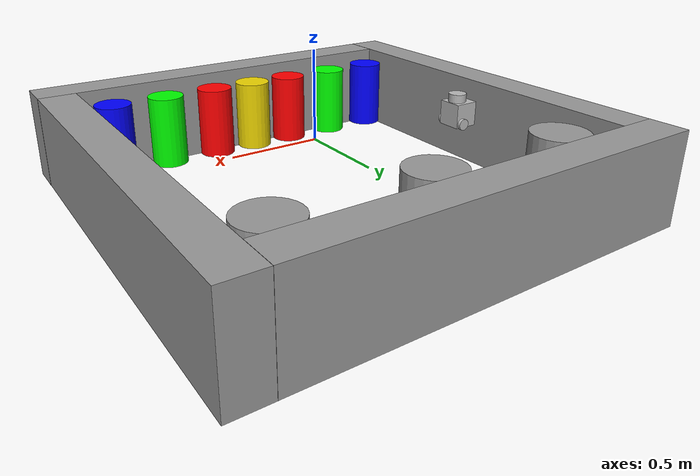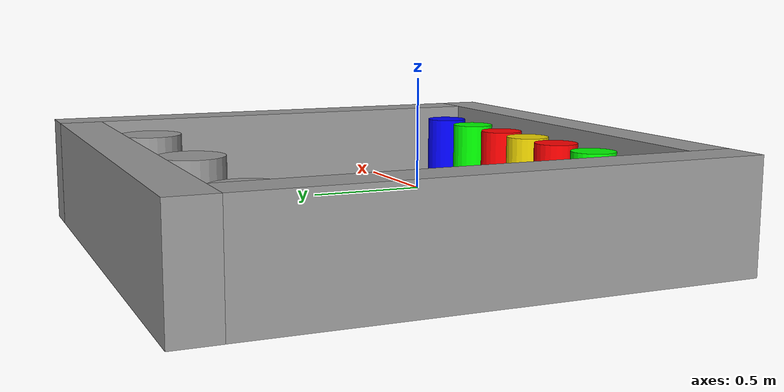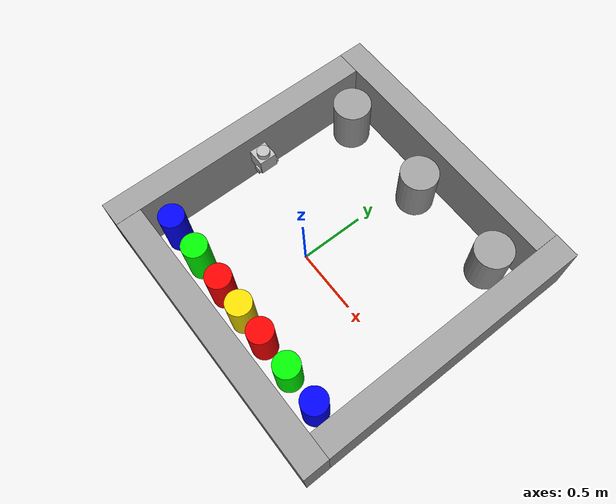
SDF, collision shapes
<?xml version='1.0'?>
<sdf version='1.6'>
  <model name='bar1'>
    <link name='link_0'>
      <inertial>
        <mass>1000</mass>
        <inertia>
          <ixx>24.1667</ixx>
          <ixy>0</ixy>
          <ixz>0</ixz>
          <iyy>424.167</iyy>
          <iyz>0</iyz>
          <izz>406.667</izz>
        </inertia>
        <pose frame=''>0 0 0 0 -0 0</pose>
      </inertial>
      <pose frame=''>0.158005 -0.863333 0 0 -0 0</pose>
      <gravity>1</gravity>
      <self_collide>0</self_collide>
      <kinematic>0</kinematic>
      <enable_wind>0</enable_wind>
      <visual name='visual'>
        <pose frame=''>0 0 0 0 -0 0</pose>
        <geometry>
          <box>
            <size>2.2 0.2 0.5</size>
          </box>
        </geometry>
        <material>
          <lighting>1</lighting>
          <script>
            <uri>file://media/materials/scripts/gazebo.material</uri>
            <name>Gazebo/Grey</name>
          </script>
          <shader type='pixel'>
            <normal_map>__default__</normal_map>
          </shader>
          <ambient>0.3 0.3 0.3 1</ambient>
          <diffuse>0.7 0.7 0.7 1</diffuse>
          <specular>0.01 0.01 0.01 1</specular>
          <emissive>0 0 0 1</emissive>
        </material>
        <transparency>0</transparency>
        <cast_shadows>1</cast_shadows>
      </visual>
      <collision name='collision'>
        <laser_retro>0</laser_retro>
        <max_contacts>10</max_contacts>
        <pose frame=''>0 0 0 0 -0 0</pose>
        <geometry>
          <box>
            <size>2.2 0.2 0.5</size>
          </box>
        </geometry>
        <surface>
          <friction>
            <ode>
              <mu>1</mu>
              <mu2>1</mu2>
              <fdir1>0 0 0</fdir1>
              <slip1>0</slip1>
              <slip2>0</slip2>
            </ode>
            <torsional>
              <coefficient>1</coefficient>
              <patch_radius>0</patch_radius>
              <surface_radius>0</surface_radius>
              <use_patch_radius>1</use_patch_radius>
              <ode>
                <slip>0</slip>
              </ode>
            </torsional>
          </friction>
          <bounce>
            <restitution_coefficient>0</restitution_coefficient>
            <threshold>1e+06</threshold>
          </bounce>
          <contact>
            <collide_without_contact>0</collide_without_contact>
            <collide_without_contact_bitmask>1</collide_without_contact_bitmask>
            <collide_bitmask>1</collide_bitmask>
            <ode>
              <soft_cfm>0</soft_cfm>
              <soft_erp>0.2</soft_erp>
              <kp>1e+13</kp>
              <kd>1</kd>
              <max_vel>0.01</max_vel>
              <min_depth>0</min_depth>
            </ode>
            <bullet>
              <split_impulse>1</split_impulse>
              <split_impulse_penetration_threshold>-0.01</split_impulse_penetration_threshold>
              <soft_cfm>0</soft_cfm>
              <soft_erp>0.2</soft_erp>
              <kp>1e+13</kp>
              <kd>1</kd>
            </bullet>
          </contact>
        </surface>
      </collision>
    </link>
    <link name='link_0_clone'>
      <inertial>
        <mass>1000</mass>
        <inertia>
          <ixx>24.1667</ixx>
          <ixy>0</ixy>
          <ixz>0</ixz>
          <iyy>424.167</iyy>
          <iyz>0</iyz>
          <izz>406.667</izz>
        </inertia>
        <pose frame=''>0 0 0 0 -0 0.03</pose>
      </inertial>
      <pose frame=''>1.158 0.336667 0 0 -0 1.57</pose>
      <gravity>1</gravity>
      <self_collide>0</self_collide>
      <kinematic>0</kinematic>
      <enable_wind>0</enable_wind>
      <visual name='visual'>
        <pose frame=''>0 0 0 0 -0 0</pose>
        <geometry>
          <box>
            <size>2.2 0.2 0.5</size>
          </box>
        </geometry>
        <material>
          <lighting>1</lighting>
          <script>
            <uri>file://media/materials/scripts/gazebo.material</uri>
            <name>Gazebo/Grey</name>
          </script>
          <shader type='pixel'>
            <normal_map>__default__</normal_map>
          </shader>
          <ambient>0.3 0.3 0.3 1</ambient>
          <diffuse>0.7 0.7 0.7 1</diffuse>
          <specular>0.01 0.01 0.01 1</specular>
          <emissive>0 0 0 1</emissive>
        </material>
        <transparency>0</transparency>
        <cast_shadows>1</cast_shadows>
      </visual>
      <collision name='collision'>
        <laser_retro>0</laser_retro>
        <max_contacts>10</max_contacts>
        <pose frame=''>0 0 0 0 -0 0</pose>
        <geometry>
          <box>
            <size>2.2 0.2 0.5</size>
          </box>
        </geometry>
        <surface>
          <friction>
            <ode>
              <mu>1</mu>
              <mu2>1</mu2>
              <fdir1>0 0 0</fdir1>
              <slip1>0</slip1>
              <slip2>0</slip2>
            </ode>
            <torsional>
              <coefficient>1</coefficient>
              <patch_radius>0</patch_radius>
              <surface_radius>0</surface_radius>
              <use_patch_radius>1</use_patch_radius>
              <ode>
                <slip>0</slip>
              </ode>
            </torsional>
          </friction>
          <bounce>
            <restitution_coefficient>0</restitution_coefficient>
            <threshold>1e+06</threshold>
          </bounce>
          <contact>
            <collide_without_contact>0</collide_without_contact>
            <collide_without_contact_bitmask>1</collide_without_contact_bitmask>
            <collide_bitmask>1</collide_bitmask>
            <ode>
              <soft_cfm>0</soft_cfm>
              <soft_erp>0.2</soft_erp>
              <kp>1e+13</kp>
              <kd>1</kd>
              <max_vel>0.01</max_vel>
              <min_depth>0</min_depth>
            </ode>
            <bullet>
              <split_impulse>1</split_impulse>
              <split_impulse_penetration_threshold>-0.01</split_impulse_penetration_threshold>
              <soft_cfm>0</soft_cfm>
              <soft_erp>0.2</soft_erp>
              <kp>1e+13</kp>
              <kd>1</kd>
            </bullet>
          </contact>
        </surface>
      </collision>
    </link>
    <link name='link_0_clone_0'>
      <inertial>
        <mass>1000</mass>
        <inertia>
          <ixx>24.1667</ixx>
          <ixy>0</ixy>
          <ixz>0</ixz>
          <iyy>424.167</iyy>
          <iyz>0</iyz>
          <izz>406.667</izz>
        </inertia>
        <pose frame=''>0 0 0 0 -0 0</pose>
      </inertial>
      <pose frame=''>-0.041995 1.33667 0 0 -0 0</pose>
      <gravity>1</gravity>
      <self_collide>0</self_collide>
      <kinematic>0</kinematic>
      <enable_wind>0</enable_wind>
      <visual name='visual'>
        <pose frame=''>0 0 0 0 -0 0</pose>
        <geometry>
          <box>
            <size>2.2 0.2 0.5</size>
          </box>
        </geometry>
        <material>
          <lighting>1</lighting>
          <script>
            <uri>file://media/materials/scripts/gazebo.material</uri>
            <name>Gazebo/Grey</name>
          </script>
          <shader type='pixel'>
            <normal_map>__default__</normal_map>
          </shader>
          <ambient>0.3 0.3 0.3 1</ambient>
          <diffuse>0.7 0.7 0.7 1</diffuse>
          <specular>0.01 0.01 0.01 1</specular>
          <emissive>0 0 0 1</emissive>
        </material>
        <transparency>0</transparency>
        <cast_shadows>1</cast_shadows>
      </visual>
      <collision name='collision'>
        <laser_retro>0</laser_retro>
        <max_contacts>10</max_contacts>
        <pose frame=''>0 0 0 0 -0 0</pose>
        <geometry>
          <box>
            <size>2.2 0.2 0.5</size>
          </box>
        </geometry>
        <surface>
          <friction>
            <ode>
              <mu>1</mu>
              <mu2>1</mu2>
              <fdir1>0 0 0</fdir1>
              <slip1>0</slip1>
              <slip2>0</slip2>
            </ode>
            <torsional>
              <coefficient>1</coefficient>
              <patch_radius>0</patch_radius>
              <surface_radius>0</surface_radius>
              <use_patch_radius>1</use_patch_radius>
              <ode>
                <slip>0</slip>
              </ode>
            </torsional>
          </friction>
          <bounce>
            <restitution_coefficient>0</restitution_coefficient>
            <threshold>1e+06</threshold>
          </bounce>
          <contact>
            <collide_without_contact>0</collide_without_contact>
            <collide_without_contact_bitmask>1</collide_without_contact_bitmask>
            <collide_bitmask>1</collide_bitmask>
            <ode>
              <soft_cfm>0</soft_cfm>
              <soft_erp>0.2</soft_erp>
              <kp>1e+13</kp>
              <kd>1</kd>
              <max_vel>0.01</max_vel>
              <min_depth>0</min_depth>
            </ode>
            <bullet>
              <split_impulse>1</split_impulse>
              <split_impulse_penetration_threshold>-0.01</split_impulse_penetration_threshold>
              <soft_cfm>0</soft_cfm>
              <soft_erp>0.2</soft_erp>
              <kp>1e+13</kp>
              <kd>1</kd>
            </bullet>
          </contact>
        </surface>
      </collision>
    </link>
    <link name='link_0_clone_clone'>
      <inertial>
        <mass>1000</mass>
        <inertia>
          <ixx>24.1667</ixx>
          <ixy>0</ixy>
          <ixz>0</ixz>
          <iyy>424.167</iyy>
          <iyz>0</iyz>
          <izz>406.667</izz>
        </inertia>
        <pose frame=''>0 0 0 0 -0 0.03</pose>
      </inertial>
      <pose frame=''>-1.042 0.136667 0 0 -0 1.57</pose>
      <gravity>1</gravity>
      <self_collide>0</self_collide>
      <kinematic>0</kinematic>
      <enable_wind>0</enable_wind>
      <visual name='visual'>
        <pose frame=''>0 0 0 0 -0 0</pose>
        <geometry>
          <box>
            <size>2.2 0.2 0.5</size>
          </box>
        </geometry>
        <material>
          <lighting>1</lighting>
          <script>
            <uri>file://media/materials/scripts/gazebo.material</uri>
            <name>Gazebo/Grey</name>
          </script>
          <shader type='pixel'>
            <normal_map>__default__</normal_map>
          </shader>
          <ambient>0.3 0.3 0.3 1</ambient>
          <diffuse>0.7 0.7 0.7 1</diffuse>
          <specular>0.01 0.01 0.01 1</specular>
          <emissive>0 0 0 1</emissive>
        </material>
        <transparency>0</transparency>
        <cast_shadows>1</cast_shadows>
      </visual>
      <collision name='collision'>
        <laser_retro>0</laser_retro>
        <max_contacts>10</max_contacts>
        <pose frame=''>0 0 0 0 -0 0</pose>
        <geometry>
          <box>
            <size>2.2 0.2 0.5</size>
          </box>
        </geometry>
        <surface>
          <friction>
            <ode>
              <mu>1</mu>
              <mu2>1</mu2>
              <fdir1>0 0 0</fdir1>
              <slip1>0</slip1>
              <slip2>0</slip2>
            </ode>
            <torsional>
              <coefficient>1</coefficient>
              <patch_radius>0</patch_radius>
              <surface_radius>0</surface_radius>
              <use_patch_radius>1</use_patch_radius>
              <ode>
                <slip>0</slip>
              </ode>
            </torsional>
          </friction>
          <bounce>
            <restitution_coefficient>0</restitution_coefficient>
            <threshold>1e+06</threshold>
          </bounce>
          <contact>
            <collide_without_contact>0</collide_without_contact>
            <collide_without_contact_bitmask>1</collide_without_contact_bitmask>
            <collide_bitmask>1</collide_bitmask>
            <ode>
              <soft_cfm>0</soft_cfm>
              <soft_erp>0.2</soft_erp>
              <kp>1e+13</kp>
              <kd>1</kd>
              <max_vel>0.01</max_vel>
              <min_depth>0</min_depth>
            </ode>
            <bullet>
              <split_impulse>1</split_impulse>
              <split_impulse_penetration_threshold>-0.01</split_impulse_penetration_threshold>
              <soft_cfm>0</soft_cfm>
              <soft_erp>0.2</soft_erp>
              <kp>1e+13</kp>
              <kd>1</kd>
            </bullet>
          </contact>
        </surface>
      </collision>
    </link>
    <link name='link_1'>
      <inertial>
        <mass>100.03</mass>
        <inertia>
          <ixx>14.5877</ixx>
          <ixy>0</ixy>
          <ixz>0</ixz>
          <iyy>14.5877</iyy>
          <iyz>0</iyz>
          <izz>12.5038</izz>
        </inertia>
        <pose frame=''>0 0 0 0 -0 0</pose>
      </inertial>
      <pose frame=''>0.908005 -0.613333 0 0 -0 0</pose>
      <gravity>1</gravity>
      <self_collide>0</self_collide>
      <kinematic>0</kinematic>
      <enable_wind>0</enable_wind>
      <visual name='visual'>
        <pose frame=''>0 0 0 0 -0 0</pose>
        <geometry>
          <cylinder>
            <radius>0.1</radius>
            <length>0.4</length>
          </cylinder>
        </geometry>
        <material>
          <lighting>1</lighting>
          <script>
            <uri>file://media/materials/scripts/gazebo.material</uri>
            <name>Gazebo/Grey</name>
          </script>
          <shader type='pixel'>
            <normal_map>__default__</normal_map>
          </shader>
          <ambient>0 0 1 1</ambient>
          <diffuse>0 0 1 1</diffuse>
          <specular>0 0 1 1</specular>
          <emissive>0 0 1 1</emissive>
        </material>
        <transparency>0</transparency>
        <cast_shadows>1</cast_shadows>
      </visual>
      <collision name='collision'>
        <laser_retro>0</laser_retro>
        <max_contacts>10</max_contacts>
        <pose frame=''>0 0 0 0 -0 0</pose>
        <geometry>
          <cylinder>
            <radius>0.1</radius>
            <length>0.4</length>
          </cylinder>
        </geometry>
        <surface>
          <friction>
            <ode>
              <mu>1</mu>
              <mu2>1</mu2>
              <fdir1>0 0 0</fdir1>
              <slip1>0</slip1>
              <slip2>0</slip2>
            </ode>
            <torsional>
              <coefficient>1</coefficient>
              <patch_radius>0</patch_radius>
              <surface_radius>0</surface_radius>
              <use_patch_radius>1</use_patch_radius>
              <ode>
                <slip>0</slip>
              </ode>
            </torsional>
          </friction>
          <bounce>
            <restitution_coefficient>0</restitution_coefficient>
            <threshold>1e+06</threshold>
          </bounce>
          <contact>
            <collide_without_contact>0</collide_without_contact>
            <collide_without_contact_bitmask>1</collide_without_contact_bitmask>
            <collide_bitmask>1</collide_bitmask>
            <ode>
              <soft_cfm>0</soft_cfm>
              <soft_erp>0.2</soft_erp>
              <kp>1e+13</kp>
              <kd>1</kd>
              <max_vel>0.01</max_vel>
              <min_depth>0</min_depth>
            </ode>
            <bullet>
              <split_impulse>1</split_impulse>
              <split_impulse_penetration_threshold>-0.01</split_impulse_penetration_threshold>
              <soft_cfm>0</soft_cfm>
              <soft_erp>0.2</soft_erp>
              <kp>1e+13</kp>
              <kd>1</kd>
            </bullet>
          </contact>
        </surface>
      </collision>
    </link>
    <link name='link_1_clone'>
      <inertial>
        <mass>100.03</mass>
        <inertia>
          <ixx>14.5877</ixx>
          <ixy>0</ixy>
          <ixz>0</ixz>
          <iyy>14.5877</iyy>
          <iyz>0</iyz>
          <izz>12.5038</izz>
        </inertia>
        <pose frame=''>0 0 0 0 -0 0</pose>
      </inertial>
      <pose frame=''>0.608005 -0.613333 0 0 -0 0</pose>
      <gravity>1</gravity>
      <self_collide>0</self_collide>
      <kinematic>0</kinematic>
      <enable_wind>0</enable_wind>
      <visual name='visual'>
        <pose frame=''>0 0 0 0 -0 0</pose>
        <geometry>
          <cylinder>
            <radius>0.1</radius>
            <length>0.4</length>
          </cylinder>
        </geometry>
        <material>
          <lighting>1</lighting>
          <script>
            <uri>file://media/materials/scripts/gazebo.material</uri>
            <name>Gazebo/Grey</name>
          </script>
          <shader type='normal_map_tangent_space'>
            <normal_map>__default__</normal_map>
          </shader>
          <ambient>0 1 0 1</ambient>
          <diffuse>0 1 0 1</diffuse>
          <specular>0 1 0 1</specular>
          <emissive>0 1 0 0.9</emissive>
        </material>
        <transparency>0</transparency>
        <cast_shadows>1</cast_shadows>
      </visual>
      <collision name='collision'>
        <laser_retro>0</laser_retro>
        <max_contacts>10</max_contacts>
        <pose frame=''>0 0 0 0 -0 0</pose>
        <geometry>
          <cylinder>
            <radius>0.1</radius>
            <length>0.4</length>
          </cylinder>
        </geometry>
        <surface>
          <friction>
            <ode>
              <mu>1</mu>
              <mu2>1</mu2>
              <fdir1>0 0 0</fdir1>
              <slip1>0</slip1>
              <slip2>0</slip2>
            </ode>
            <torsional>
              <coefficient>1</coefficient>
              <patch_radius>0</patch_radius>
              <surface_radius>0</surface_radius>
              <use_patch_radius>1</use_patch_radius>
              <ode>
                <slip>0</slip>
              </ode>
            </torsional>
          </friction>
          <bounce>
            <restitution_coefficient>0</restitution_coefficient>
            <threshold>1e+06</threshold>
          </bounce>
          <contact>
            <collide_without_contact>0</collide_without_contact>
            <collide_without_contact_bitmask>1</collide_without_contact_bitmask>
            <collide_bitmask>1</collide_bitmask>
            <ode>
              <soft_cfm>0</soft_cfm>
              <soft_erp>0.2</soft_erp>
              <kp>1e+13</kp>
              <kd>1</kd>
              <max_vel>0.01</max_vel>
              <min_depth>0</min_depth>
            </ode>
            <bullet>
              <split_impulse>1</split_impulse>
              <split_impulse_penetration_threshold>-0.01</split_impulse_penetration_threshold>
              <soft_cfm>0</soft_cfm>
              <soft_erp>0.2</soft_erp>
              <kp>1e+13</kp>
              <kd>1</kd>
            </bullet>
          </contact>
        </surface>
      </collision>
    </link>
    <link name='link_1_clone_0'>
      <inertial>
        <mass>100.03</mass>
        <inertia>
          <ixx>14.5877</ixx>
          <ixy>0</ixy>
          <ixz>0</ixz>
          <iyy>14.5877</iyy>
          <iyz>0</iyz>
          <izz>12.5038</izz>
        </inertia>
        <pose frame=''>0 0 0 0 -0 0</pose>
      </inertial>
      <pose frame=''>0.308005 -0.613333 0 0 -0 0</pose>
      <gravity>1</gravity>
      <self_collide>0</self_collide>
      <kinematic>0</kinematic>
      <enable_wind>0</enable_wind>
      <visual name='visual'>
        <pose frame=''>0 0 0 0 -0 0</pose>
        <geometry>
          <cylinder>
            <radius>0.1</radius>
            <length>0.4</length>
          </cylinder>
        </geometry>
        <material>
          <lighting>1</lighting>
          <script>
            <uri>file://media/materials/scripts/gazebo.material</uri>
            <name>Gazebo/Grey</name>
          </script>
          <shader type='pixel'>
            <normal_map>__default__</normal_map>
          </shader>
          <ambient>1 0 0 1</ambient>
          <diffuse>1 0 0 1</diffuse>
          <specular>1 0 0 1</specular>
          <emissive>1 0 0 1</emissive>
        </material>
        <transparency>0</transparency>
        <cast_shadows>1</cast_shadows>
      </visual>
      <collision name='collision'>
        <laser_retro>0</laser_retro>
        <max_contacts>10</max_contacts>
        <pose frame=''>0 0 0 0 -0 0</pose>
        <geometry>
          <cylinder>
            <radius>0.1</radius>
            <length>0.4</length>
          </cylinder>
        </geometry>
        <surface>
          <friction>
            <ode>
              <mu>1</mu>
              <mu2>1</mu2>
              <fdir1>0 0 0</fdir1>
              <slip1>0</slip1>
              <slip2>0</slip2>
            </ode>
            <torsional>
              <coefficient>1</coefficient>
              <patch_radius>0</patch_radius>
              <surface_radius>0</surface_radius>
              <use_patch_radius>1</use_patch_radius>
              <ode>
                <slip>0</slip>
              </ode>
            </torsional>
          </friction>
          <bounce>
            <restitution_coefficient>0</restitution_coefficient>
            <threshold>1e+06</threshold>
          </bounce>
          <contact>
            <collide_without_contact>0</collide_without_contact>
            <collide_without_contact_bitmask>1</collide_without_contact_bitmask>
            <collide_bitmask>1</collide_bitmask>
            <ode>
              <soft_cfm>0</soft_cfm>
              <soft_erp>0.2</soft_erp>
              <kp>1e+13</kp>
              <kd>1</kd>
              <max_vel>0.01</max_vel>
              <min_depth>0</min_depth>
            </ode>
            <bullet>
              <split_impulse>1</split_impulse>
              <split_impulse_penetration_threshold>-0.01</split_impulse_penetration_threshold>
              <soft_cfm>0</soft_cfm>
              <soft_erp>0.2</soft_erp>
              <kp>1e+13</kp>
              <kd>1</kd>
            </bullet>
          </contact>
        </surface>
      </collision>
    </link>
    <link name='link_1_clone_1'>
      <inertial>
        <mass>100.03</mass>
        <inertia>
          <ixx>14.5877</ixx>
          <ixy>0</ixy>
          <ixz>0</ixz>
          <iyy>14.5877</iyy>
          <iyz>0</iyz>
          <izz>12.5038</izz>
        </inertia>
        <pose frame=''>0 0 0 0 -0 0</pose>
      </inertial>
      <pose frame=''>-0.191995 -0.613333 0 0 -0 0</pose>
      <gravity>1</gravity>
      <self_collide>0</self_collide>
      <kinematic>0</kinematic>
      <enable_wind>0</enable_wind>
      <visual name='visual'>
        <pose frame=''>0 0 0 0 -0 0</pose>
        <geometry>
          <cylinder>
            <radius>0.1</radius>
            <length>0.4</length>
          </cylinder>
        </geometry>
        <material>
          <lighting>1</lighting>
          <script>
            <uri>file://media/materials/scripts/gazebo.material</uri>
            <name>Gazebo/Grey</name>
          </script>
          <shader type='pixel'>
            <normal_map>__default__</normal_map>
          </shader>
          <ambient>1 0 0 1</ambient>
          <diffuse>1 0 0 1</diffuse>
          <specular>1 0 0 1</specular>
          <emissive>1 0 0 1</emissive>
        </material>
        <transparency>0</transparency>
        <cast_shadows>1</cast_shadows>
      </visual>
      <collision name='collision'>
        <laser_retro>0</laser_retro>
        <max_contacts>10</max_contacts>
        <pose frame=''>0 0 0 0 -0 0</pose>
        <geometry>
          <cylinder>
            <radius>0.1</radius>
            <length>0.4</length>
          </cylinder>
        </geometry>
        <surface>
          <friction>
            <ode>
              <mu>1</mu>
              <mu2>1</mu2>
              <fdir1>0 0 0</fdir1>
              <slip1>0</slip1>
              <slip2>0</slip2>
            </ode>
            <torsional>
              <coefficient>1</coefficient>
              <patch_radius>0</patch_radius>
              <surface_radius>0</surface_radius>
              <use_patch_radius>1</use_patch_radius>
              <ode>
                <slip>0</slip>
              </ode>
            </torsional>
          </friction>
          <bounce>
            <restitution_coefficient>0</restitution_coefficient>
            <threshold>1e+06</threshold>
          </bounce>
          <contact>
            <collide_without_contact>0</collide_without_contact>
            <collide_without_contact_bitmask>1</collide_without_contact_bitmask>
            <collide_bitmask>1</collide_bitmask>
            <ode>
              <soft_cfm>0</soft_cfm>
              <soft_erp>0.2</soft_erp>
              <kp>1e+13</kp>
              <kd>1</kd>
              <max_vel>0.01</max_vel>
              <min_depth>0</min_depth>
            </ode>
            <bullet>
              <split_impulse>1</split_impulse>
              <split_impulse_penetration_threshold>-0.01</split_impulse_penetration_threshold>
              <soft_cfm>0</soft_cfm>
              <soft_erp>0.2</soft_erp>
              <kp>1e+13</kp>
              <kd>1</kd>
            </bullet>
          </contact>
        </surface>
      </collision>
    </link>
    <link name='link_1_clone_2'>
      <inertial>
        <mass>100.03</mass>
        <inertia>
          <ixx>14.5877</ixx>
          <ixy>0</ixy>
          <ixz>0</ixz>
          <iyy>14.5877</iyy>
          <iyz>0</iyz>
          <izz>12.5038</izz>
        </inertia>
        <pose frame=''>0 0 0 0 -0 0</pose>
      </inertial>
      <pose frame=''>-0.491995 -0.613333 0 0 -0 0</pose>
      <gravity>1</gravity>
      <self_collide>0</self_collide>
      <kinematic>0</kinematic>
      <enable_wind>0</enable_wind>
      <visual name='visual'>
        <pose frame=''>0 0 0 0 -0 0</pose>
        <geometry>
          <cylinder>
            <radius>0.1</radius>
            <length>0.4</length>
          </cylinder>
        </geometry>
        <material>
          <lighting>1</lighting>
          <script>
            <uri>file://media/materials/scripts/gazebo.material</uri>
            <name>Gazebo/Grey</name>
          </script>
          <shader type='pixel'>
            <normal_map>__default__</normal_map>
          </shader>
          <ambient>0 1 0 1</ambient>
          <diffuse>0 1 0 1</diffuse>
          <specular>0 1 0 1</specular>
          <emissive>0 1 0 1</emissive>
        </material>
        <transparency>0</transparency>
        <cast_shadows>1</cast_shadows>
      </visual>
      <collision name='collision'>
        <laser_retro>0</laser_retro>
        <max_contacts>10</max_contacts>
        <pose frame=''>0 0 0 0 -0 0</pose>
        <geometry>
          <cylinder>
            <radius>0.1</radius>
            <length>0.4</length>
          </cylinder>
        </geometry>
        <surface>
          <friction>
            <ode>
              <mu>1</mu>
              <mu2>1</mu2>
              <fdir1>0 0 0</fdir1>
              <slip1>0</slip1>
              <slip2>0</slip2>
            </ode>
            <torsional>
              <coefficient>1</coefficient>
              <patch_radius>0</patch_radius>
              <surface_radius>0</surface_radius>
              <use_patch_radius>1</use_patch_radius>
              <ode>
                <slip>0</slip>
              </ode>
            </torsional>
          </friction>
          <bounce>
            <restitution_coefficient>0</restitution_coefficient>
            <threshold>1e+06</threshold>
          </bounce>
          <contact>
            <collide_without_contact>0</collide_without_contact>
            <collide_without_contact_bitmask>1</collide_without_contact_bitmask>
            <collide_bitmask>1</collide_bitmask>
            <ode>
              <soft_cfm>0</soft_cfm>
              <soft_erp>0.2</soft_erp>
              <kp>1e+13</kp>
              <kd>1</kd>
              <max_vel>0.01</max_vel>
              <min_depth>0</min_depth>
            </ode>
            <bullet>
              <split_impulse>1</split_impulse>
              <split_impulse_penetration_threshold>-0.01</split_impulse_penetration_threshold>
              <soft_cfm>0</soft_cfm>
              <soft_erp>0.2</soft_erp>
              <kp>1e+13</kp>
              <kd>1</kd>
            </bullet>
          </contact>
        </surface>
      </collision>
    </link>
    <link name='link_1_clone_3'>
      <inertial>
        <mass>100.03</mass>
        <inertia>
          <ixx>14.5877</ixx>
          <ixy>0</ixy>
          <ixz>0</ixz>
          <iyy>14.5877</iyy>
          <iyz>0</iyz>
          <izz>12.5038</izz>
        </inertia>
        <pose frame=''>0 0 0 0 -0 0</pose>
      </inertial>
      <pose frame=''>-0.791995 -0.613333 0 0 -0 0</pose>
      <gravity>1</gravity>
      <self_collide>0</self_collide>
      <kinematic>0</kinematic>
      <enable_wind>0</enable_wind>
      <visual name='visual'>
        <pose frame=''>0 0 0 0 -0 0</pose>
        <geometry>
          <cylinder>
            <radius>0.1</radius>
            <length>0.4</length>
          </cylinder>
        </geometry>
        <material>
          <lighting>1</lighting>
          <script>
            <uri>file://media/materials/scripts/gazebo.material</uri>
            <name>Gazebo/Grey</name>
          </script>
          <shader type='pixel'>
            <normal_map>__default__</normal_map>
          </shader>
          <ambient>0 0 1 1</ambient>
          <diffuse>0 0 1 1</diffuse>
          <specular>0 0 1 1</specular>
          <emissive>0 0 1 1</emissive>
        </material>
        <transparency>0</transparency>
        <cast_shadows>1</cast_shadows>
      </visual>
      <collision name='collision'>
        <laser_retro>0</laser_retro>
        <max_contacts>10</max_contacts>
        <pose frame=''>0 0 0 0 -0 0</pose>
        <geometry>
          <cylinder>
            <radius>0.1</radius>
            <length>0.4</length>
          </cylinder>
        </geometry>
        <surface>
          <friction>
            <ode>
              <mu>1</mu>
              <mu2>1</mu2>
              <fdir1>0 0 0</fdir1>
              <slip1>0</slip1>
              <slip2>0</slip2>
            </ode>
            <torsional>
              <coefficient>1</coefficient>
              <patch_radius>0</patch_radius>
              <surface_radius>0</surface_radius>
              <use_patch_radius>1</use_patch_radius>
              <ode>
                <slip>0</slip>
              </ode>
            </torsional>
          </friction>
          <bounce>
            <restitution_coefficient>0</restitution_coefficient>
            <threshold>1e+06</threshold>
          </bounce>
          <contact>
            <collide_without_contact>0</collide_without_contact>
            <collide_without_contact_bitmask>1</collide_without_contact_bitmask>
            <collide_bitmask>1</collide_bitmask>
            <ode>
              <soft_cfm>0</soft_cfm>
              <soft_erp>0.2</soft_erp>
              <kp>1e+13</kp>
              <kd>1</kd>
              <max_vel>0.01</max_vel>
              <min_depth>0</min_depth>
            </ode>
            <bullet>
              <split_impulse>1</split_impulse>
              <split_impulse_penetration_threshold>-0.01</split_impulse_penetration_threshold>
              <soft_cfm>0</soft_cfm>
              <soft_erp>0.2</soft_erp>
              <kp>1e+13</kp>
              <kd>1</kd>
            </bullet>
          </contact>
        </surface>
      </collision>
    </link>
    <link name='link_1_clone_3_clone'>
      <inertial>
        <mass>100.03</mass>
        <inertia>
          <ixx>14.5877</ixx>
          <ixy>0</ixy>
          <ixz>0</ixz>
          <iyy>14.5877</iyy>
          <iyz>0</iyz>
          <izz>12.5038</izz>
        </inertia>
        <pose frame=''>0 0 0 0 -0 0</pose>
      </inertial>
      <pose frame=''>0.058005 -0.613333 0 0 -0 0</pose>
      <gravity>1</gravity>
      <self_collide>0</self_collide>
      <kinematic>0</kinematic>
      <enable_wind>0</enable_wind>
      <visual name='visual'>
        <pose frame=''>0 0 0 0 -0 0</pose>
        <geometry>
          <cylinder>
            <radius>0.1</radius>
            <length>0.4</length>
          </cylinder>
        </geometry>
        <material>
          <lighting>1</lighting>
          <script>
            <uri>file://media/materials/scripts/gazebo.material</uri>
            <name>Gazebo/Grey</name>
          </script>
          <shader type='pixel'>
            <normal_map>__default__</normal_map>
          </shader>
          <ambient>0.929 0.831 0 1</ambient>
          <diffuse>0.929 0.831 0 1</diffuse>
          <specular>0.929 0.831 0 1</specular>
          <emissive>0.929 0.831 0 1</emissive>
        </material>
        <transparency>0</transparency>
        <cast_shadows>1</cast_shadows>
      </visual>
      <collision name='collision'>
        <laser_retro>0</laser_retro>
        <max_contacts>10</max_contacts>
        <pose frame=''>0 0 0 0 -0 0</pose>
        <geometry>
          <cylinder>
            <radius>0.1</radius>
            <length>0.4</length>
          </cylinder>
        </geometry>
        <surface>
          <friction>
            <ode>
              <mu>1</mu>
              <mu2>1</mu2>
              <fdir1>0 0 0</fdir1>
              <slip1>0</slip1>
              <slip2>0</slip2>
            </ode>
            <torsional>
              <coefficient>1</coefficient>
              <patch_radius>0</patch_radius>
              <surface_radius>0</surface_radius>
              <use_patch_radius>1</use_patch_radius>
              <ode>
                <slip>0</slip>
              </ode>
            </torsional>
          </friction>
          <bounce>
            <restitution_coefficient>0</restitution_coefficient>
            <threshold>1e+06</threshold>
          </bounce>
          <contact>
            <collide_without_contact>0</collide_without_contact>
            <collide_without_contact_bitmask>1</collide_without_contact_bitmask>
            <collide_bitmask>1</collide_bitmask>
            <ode>
              <soft_cfm>0</soft_cfm>
              <soft_erp>0.2</soft_erp>
              <kp>1e+13</kp>
              <kd>1</kd>
              <max_vel>0.01</max_vel>
              <min_depth>0</min_depth>
            </ode>
            <bullet>
              <split_impulse>1</split_impulse>
              <split_impulse_penetration_threshold>-0.01</split_impulse_penetration_threshold>
              <soft_cfm>0</soft_cfm>
              <soft_erp>0.2</soft_erp>
              <kp>1e+13</kp>
              <kd>1</kd>
            </bullet>
          </contact>
        </surface>
      </collision>
    </link>
    <link name='link_2'>
      <inertial>
        <mass>1</mass>
        <inertia>
          <ixx>0.145833</ixx>
          <ixy>0</ixy>
          <ixz>0</ixz>
          <iyy>0.145833</iyy>
          <iyz>0</iyz>
          <izz>0.125</izz>
        </inertia>
        <pose frame=''>0 0 0 0 -0 0</pose>
      </inertial>
      <pose frame=''>0.858005 1.03667 0 0 -0 0</pose>
      <gravity>1</gravity>
      <self_collide>0</self_collide>
      <kinematic>0</kinematic>
      <enable_wind>0</enable_wind>
      <visual name='visual'>
        <pose frame=''>0 0 0 0 -0 0</pose>
        <geometry>
          <cylinder>
            <radius>0.15</radius>
            <length>0.4</length>
          </cylinder>
        </geometry>
        <material>
          <lighting>1</lighting>
          <script>
            <uri>file://media/materials/scripts/gazebo.material</uri>
            <name>Gazebo/Grey</name>
          </script>
          <shader type='pixel'>
            <normal_map>__default__</normal_map>
          </shader>
          <ambient>0.729 0.741 0.714 1</ambient>
          <diffuse>0.729 0.741 0.714 1</diffuse>
          <specular>0.729 0.741 0.714 1</specular>
          <emissive>0.729 0.741 0.714 1</emissive>
        </material>
        <transparency>0.5</transparency>
        <cast_shadows>1</cast_shadows>
      </visual>
      <collision name='collision'>
        <laser_retro>0</laser_retro>
        <max_contacts>10</max_contacts>
        <pose frame=''>0 0 0 0 -0 0</pose>
        <geometry>
          <cylinder>
            <radius>0.15</radius>
            <length>0.4</length>
          </cylinder>
        </geometry>
        <surface>
          <friction>
            <ode>
              <mu>1</mu>
              <mu2>1</mu2>
              <fdir1>0 0 0</fdir1>
              <slip1>0</slip1>
              <slip2>0</slip2>
            </ode>
            <torsional>
              <coefficient>1</coefficient>
              <patch_radius>0</patch_radius>
              <surface_radius>0</surface_radius>
              <use_patch_radius>1</use_patch_radius>
              <ode>
                <slip>0</slip>
              </ode>
            </torsional>
          </friction>
          <bounce>
            <restitution_coefficient>0</restitution_coefficient>
            <threshold>1e+06</threshold>
          </bounce>
          <contact>
            <collide_without_contact>0</collide_without_contact>
            <collide_without_contact_bitmask>1</collide_without_contact_bitmask>
            <collide_bitmask>1</collide_bitmask>
            <ode>
              <soft_cfm>0</soft_cfm>
              <soft_erp>0.2</soft_erp>
              <kp>1e+13</kp>
              <kd>1</kd>
              <max_vel>0.01</max_vel>
              <min_depth>0</min_depth>
            </ode>
            <bullet>
              <split_impulse>1</split_impulse>
              <split_impulse_penetration_threshold>-0.01</split_impulse_penetration_threshold>
              <soft_cfm>0</soft_cfm>
              <soft_erp>0.2</soft_erp>
              <kp>1e+13</kp>
              <kd>1</kd>
            </bullet>
          </contact>
        </surface>
      </collision>
    </link>
    <link name='link_2_clone'>
      <inertial>
        <mass>1</mass>
        <inertia>
          <ixx>0.145833</ixx>
          <ixy>0</ixy>
          <ixz>0</ixz>
          <iyy>0.145833</iyy>
          <iyz>0</iyz>
          <izz>0.125</izz>
        </inertia>
        <pose frame=''>0 0 0 0 -0 0</pose>
      </inertial>
      <pose frame=''>0.058005 1.03667 0 0 -0 0</pose>
      <gravity>1</gravity>
      <self_collide>0</self_collide>
      <kinematic>0</kinematic>
      <enable_wind>0</enable_wind>
      <visual name='visual'>
        <pose frame=''>0 0 0 0 -0 0</pose>
        <geometry>
          <cylinder>
            <radius>0.15</radius>
            <length>0.4</length>
          </cylinder>
        </geometry>
        <material>
          <lighting>1</lighting>
          <script>
            <uri>file://media/materials/scripts/gazebo.material</uri>
            <name>Gazebo/Grey</name>
          </script>
          <shader type='pixel'>
            <normal_map>__default__</normal_map>
          </shader>
          <ambient>0.729 0.741 0.714 1</ambient>
          <diffuse>0.729 0.741 0.714 1</diffuse>
          <specular>0.729 0.741 0.714 1</specular>
          <emissive>0.729 0.741 0.714 1</emissive>
        </material>
        <transparency>0.5</transparency>
        <cast_shadows>1</cast_shadows>
      </visual>
      <collision name='collision'>
        <laser_retro>0</laser_retro>
        <max_contacts>10</max_contacts>
        <pose frame=''>0 0 0 0 -0 0</pose>
        <geometry>
          <cylinder>
            <radius>0.15</radius>
            <length>0.4</length>
          </cylinder>
        </geometry>
        <surface>
          <friction>
            <ode>
              <mu>1</mu>
              <mu2>1</mu2>
              <fdir1>0 0 0</fdir1>
              <slip1>0</slip1>
              <slip2>0</slip2>
            </ode>
            <torsional>
              <coefficient>1</coefficient>
              <patch_radius>0</patch_radius>
              <surface_radius>0</surface_radius>
              <use_patch_radius>1</use_patch_radius>
              <ode>
                <slip>0</slip>
              </ode>
            </torsional>
          </friction>
          <bounce>
            <restitution_coefficient>0</restitution_coefficient>
            <threshold>1e+06</threshold>
          </bounce>
          <contact>
            <collide_without_contact>0</collide_without_contact>
            <collide_without_contact_bitmask>1</collide_without_contact_bitmask>
            <collide_bitmask>1</collide_bitmask>
            <ode>
              <soft_cfm>0</soft_cfm>
              <soft_erp>0.2</soft_erp>
              <kp>1e+13</kp>
              <kd>1</kd>
              <max_vel>0.01</max_vel>
              <min_depth>0</min_depth>
            </ode>
            <bullet>
              <split_impulse>1</split_impulse>
              <split_impulse_penetration_threshold>-0.01</split_impulse_penetration_threshold>
              <soft_cfm>0</soft_cfm>
              <soft_erp>0.2</soft_erp>
              <kp>1e+13</kp>
              <kd>1</kd>
            </bullet>
          </contact>
        </surface>
      </collision>
    </link>
    <link name='link_2_clone_0'>
      <inertial>
        <mass>1</mass>
        <inertia>
          <ixx>0.145833</ixx>
          <ixy>0</ixy>
          <ixz>0</ixz>
          <iyy>0.145833</iyy>
          <iyz>0</iyz>
          <izz>0.125</izz>
        </inertia>
        <pose frame=''>0 0 0 0 -0 0</pose>
      </inertial>
      <pose frame=''>-0.741995 1.03667 0 0 -0 0</pose>
      <gravity>1</gravity>
      <self_collide>0</self_collide>
      <kinematic>0</kinematic>
      <enable_wind>0</enable_wind>
      <visual name='visual'>
        <pose frame=''>0 0 0 0 -0 0</pose>
        <geometry>
          <cylinder>
            <radius>0.15</radius>
            <length>0.4</length>
          </cylinder>
        </geometry>
        <material>
          <lighting>1</lighting>
          <script>
            <uri>file://media/materials/scripts/gazebo.material</uri>
            <name>Gazebo/Grey</name>
          </script>
          <shader type='pixel'>
            <normal_map>__default__</normal_map>
          </shader>
          <ambient>0.729 0.741 0.714 1</ambient>
          <diffuse>0.729 0.741 0.714 1</diffuse>
          <specular>0.729 0.741 0.714 1</specular>
          <emissive>0.729 0.741 0.714 1</emissive>
        </material>
        <transparency>0.5</transparency>
        <cast_shadows>1</cast_shadows>
      </visual>
      <collision name='collision'>
        <laser_retro>0</laser_retro>
        <max_contacts>10</max_contacts>
        <pose frame=''>0 0 0 0 -0 0</pose>
        <geometry>
          <cylinder>
            <radius>0.15</radius>
            <length>0.4</length>
          </cylinder>
        </geometry>
        <surface>
          <friction>
            <ode>
              <mu>1</mu>
              <mu2>1</mu2>
              <fdir1>0 0 0</fdir1>
              <slip1>0</slip1>
              <slip2>0</slip2>
            </ode>
            <torsional>
              <coefficient>1</coefficient>
              <patch_radius>0</patch_radius>
              <surface_radius>0</surface_radius>
              <use_patch_radius>1</use_patch_radius>
              <ode>
                <slip>0</slip>
              </ode>
            </torsional>
          </friction>
          <bounce>
            <restitution_coefficient>0</restitution_coefficient>
            <threshold>1e+06</threshold>
          </bounce>
          <contact>
            <collide_without_contact>0</collide_without_contact>
            <collide_without_contact_bitmask>1</collide_without_contact_bitmask>
            <collide_bitmask>1</collide_bitmask>
            <ode>
              <soft_cfm>0</soft_cfm>
              <soft_erp>0.2</soft_erp>
              <kp>1e+13</kp>
              <kd>1</kd>
              <max_vel>0.01</max_vel>
              <min_depth>0</min_depth>
            </ode>
            <bullet>
              <split_impulse>1</split_impulse>
              <split_impulse_penetration_threshold>-0.01</split_impulse_penetration_threshold>
              <soft_cfm>0</soft_cfm>
              <soft_erp>0.2</soft_erp>
              <kp>1e+13</kp>
              <kd>1</kd>
            </bullet>
          </contact>
        </surface>
      </collision>
    </link>
    <model name='turtlebot3_burger'>
      <link name='base'>
        <inertial>
          <pose frame=''>-0.032 0 0.07 0 -0 0</pose>
          <inertia>
            <ixx>0.001</ixx>
            <ixy>0</ixy>
            <ixz>0</ixz>
            <iyy>0.001</iyy>
            <iyz>0</iyz>
            <izz>0.001</izz>
          </inertia>
          <mass>1</mass>
        </inertial>
        <collision name='base_collision'>
          <pose frame=''>-0.032 0 0.07 0 -0 0</pose>
          <geometry>
            <box>
              <size>0.14 0.14 0.14</size>
            </box>
          </geometry>
        </collision>
        <visual name='base_visual'>
          <pose frame=''>-0.032 0 0 0 -0 0</pose>
          <geometry>
            <mesh>
              <uri>model://turtlebot3_burger/meshes/burger_base.dae</uri>
              <scale>0.001 0.001 0.001</scale>
            </mesh>
          </geometry>
        </visual>
        <collision name='caster_collision'>
          <pose frame=''>-0.081 0 -0.004 0 -0 0</pose>
          <geometry>
            <sphere>
              <radius>0.005</radius>
            </sphere>
          </geometry>
          <surface>
            <friction>
              <ode>
                <mu>100000</mu>
                <mu2>100000</mu2>
                <fdir1>0 0 0</fdir1>
                <slip1>0</slip1>
                <slip2>0</slip2>
              </ode>
            </friction>
          </surface>
        </collision>
      </link>
      <link name='lidar'>
        <inertial>
          <pose frame=''>-0.02 0 0.161 0 -0 0</pose>
          <inertia>
            <ixx>0.001</ixx>
            <ixy>0</ixy>
            <ixz>0</ixz>
            <iyy>0.001</iyy>
            <iyz>0</iyz>
            <izz>0.001</izz>
          </inertia>
          <mass>0.125</mass>
        </inertial>
        <collision name='lidar_sensor_collision'>
          <pose frame=''>-0.02 0 0.161 0 -0 0</pose>
          <geometry>
            <cylinder>
              <radius>0.0508</radius>
              <length>0.055</length>
            </cylinder>
          </geometry>
        </collision>
        <visual name='lidar_sensor_visual'>
          <pose frame=''>-0.032 0 0.171 0 -0 0</pose>
          <geometry>
            <mesh>
              <uri>model://turtlebot3_burger/meshes/lds.dae</uri>
              <scale>0.001 0.001 0.001</scale>
            </mesh>
          </geometry>
        </visual>
        <sensor name='hls_lfcd_lds' type='ray'>
          <always_on>1</always_on>
          <visualize>0</visualize>
          <pose frame=''>-0.032 0 0.171 0 -0 0</pose>
          <update_rate>1800</update_rate>
          <ray>
            <scan>
              <horizontal>
                <samples>360</samples>
                <resolution>1</resolution>
                <min_angle>0</min_angle>
                <max_angle>6.28</max_angle>
              </horizontal>
            </scan>
            <range>
              <min>0.12</min>
              <max>3.5</max>
              <resolution>0.015</resolution>
            </range>
            <noise>
              <type>gaussian</type>
              <mean>0</mean>
              <stddev>0.01</stddev>
            </noise>
          </ray>
        </sensor>
      </link>
      <link name='left_wheel'>
        <inertial>
          <pose frame=''>0 0.08 0.023 -1.57 0 0</pose>
          <inertia>
            <ixx>0.001</ixx>
            <ixy>0</ixy>
            <ixz>0</ixz>
            <iyy>0.001</iyy>
            <iyz>0</iyz>
            <izz>0.001</izz>
          </inertia>
          <mass>0.1</mass>
        </inertial>
        <collision name='left_wheel_collision'>
          <pose frame=''>0 0.08 0.023 -1.57 0 0</pose>
          <geometry>
            <cylinder>
              <radius>0.033</radius>
              <length>0.018</length>
            </cylinder>
          </geometry>
          <surface>
            <friction>
              <ode>
                <mu>100000</mu>
                <mu2>100000</mu2>
                <fdir1>0 0 0</fdir1>
                <slip1>0</slip1>
                <slip2>0</slip2>
              </ode>
            </friction>
          </surface>
        </collision>
        <visual name='left_wheel_visual'>
          <pose frame=''>0 0.08 0.023 0 -0 0</pose>
          <geometry>
            <mesh>
              <uri>model://turtlebot3_burger/meshes/left_tire.dae</uri>
              <scale>0.001 0.001 0.001</scale>
            </mesh>
          </geometry>
        </visual>
      </link>
      <link name='right_wheel'>
        <inertial>
          <pose frame=''>0 -0.08 0.023 -1.57 0 0</pose>
          <inertia>
            <ixx>0.001</ixx>
            <ixy>0</ixy>
            <ixz>0</ixz>
            <iyy>0.001</iyy>
            <iyz>0</iyz>
            <izz>0.001</izz>
          </inertia>
          <mass>0.1</mass>
        </inertial>
        <collision name='right_wheel_collision'>
          <pose frame=''>0 -0.08 0.023 -1.57 0 0</pose>
          <geometry>
            <cylinder>
              <radius>0.033</radius>
              <length>0.018</length>
            </cylinder>
          </geometry>
          <surface>
            <friction>
              <ode>
                <mu>100000</mu>
                <mu2>100000</mu2>
                <fdir1>0 0 0</fdir1>
                <slip1>0</slip1>
                <slip2>0</slip2>
              </ode>
            </friction>
          </surface>
        </collision>
        <visual name='right_wheel_visual'>
          <pose frame=''>0 -0.08 0.023 0 -0 0</pose>
          <geometry>
            <mesh>
              <uri>model://turtlebot3_burger/meshes/right_tire.dae</uri>
              <scale>0.001 0.001 0.001</scale>
            </mesh>
          </geometry>
        </visual>
      </link>
      <joint name='left_wheel_joint' type='revolute'>
        <parent>base</parent>
        <child>left_wheel</child>
        <pose frame=''>0 0.08 0.023 -1.57 0 0</pose>
        <axis>
          <xyz>0 1 0</xyz>
          <use_parent_model_frame>0</use_parent_model_frame>
          <limit>
            <lower>-1e+16</lower>
            <upper>1e+16</upper>
          </limit>
        </axis>
      </joint>
      <joint name='right_wheel_joint' type='revolute'>
        <parent>base</parent>
        <child>right_wheel</child>
        <pose frame=''>0 -0.08 0.023 -1.57 0 0</pose>
        <axis>
          <xyz>0 1 0</xyz>
          <use_parent_model_frame>0</use_parent_model_frame>
          <limit>
            <lower>-1e+16</lower>
            <upper>1e+16</upper>
          </limit>
        </axis>
      </joint>
      <joint name='lidar_joint' type='fixed'>
        <parent>base</parent>
        <child>lidar</child>
        <pose frame=''>-0.032 0 0.171 0 -0 0</pose>
        <axis>
          <xyz>0 0 1</xyz>
          <use_parent_model_frame>1</use_parent_model_frame>
          <limit>
            <lower>-1e+16</lower>
            <upper>1e+16</upper>
          </limit>
        </axis>
      </joint>
      <static>0</static>
      <pose frame=''>-0.812072 0.236667 0 0 -0 0</pose>
    </model>
    <static>0</static>
    <allow_auto_disable>1</allow_auto_disable>
  </model>
</sdf>
